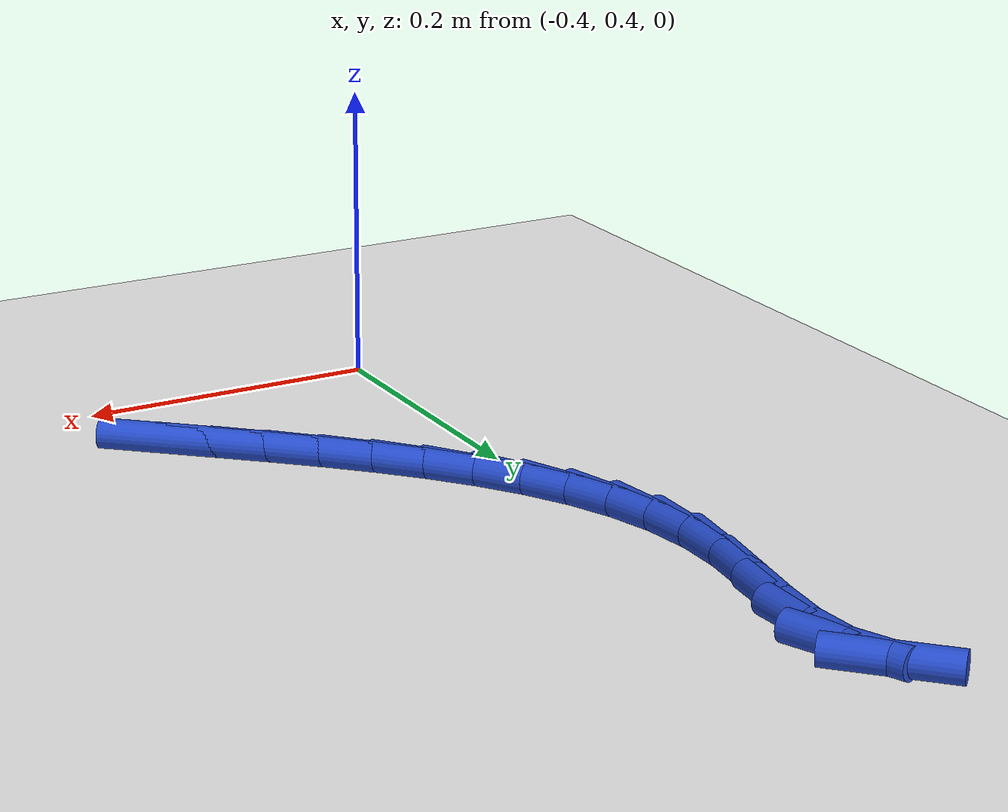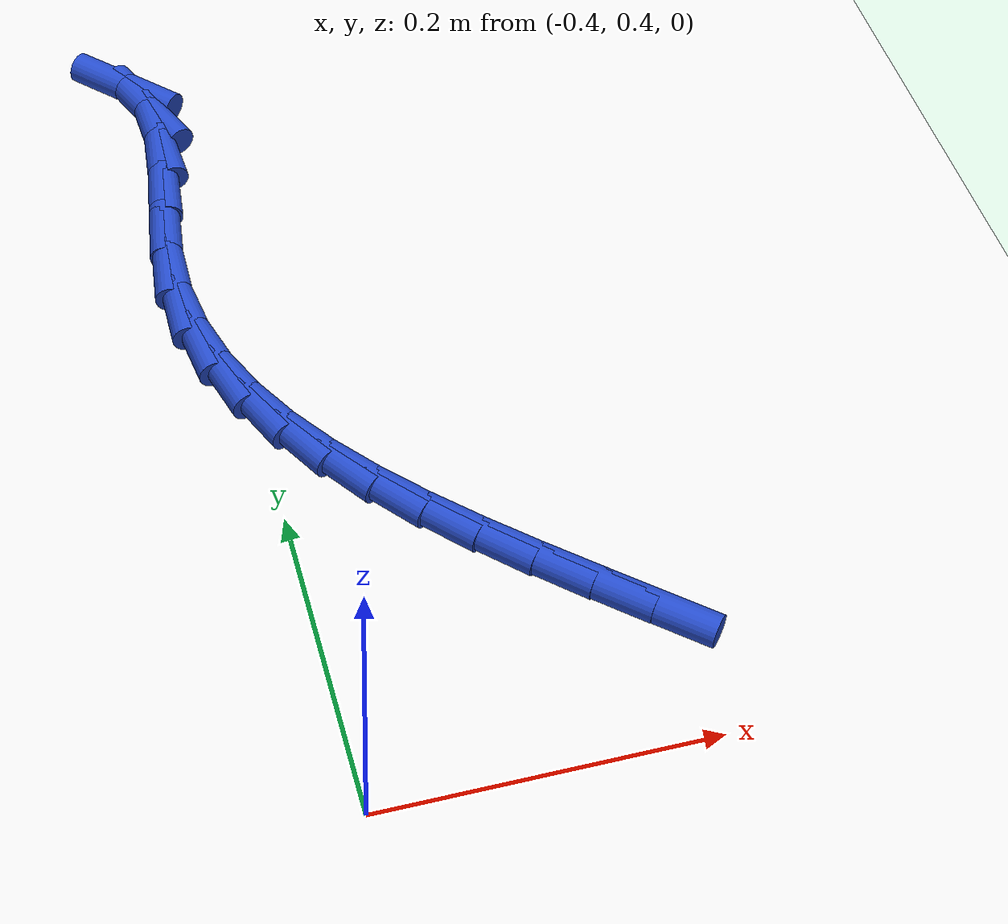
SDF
<sdf version="1.6">
 <world name="default">
  <model name="ground_plane">
   <static>1</static>
   <link name="link">
    <collision name="collision">
     <geometry><plane><normal>0 0 1</normal><size>100 100</size></plane></geometry>
     <surface><friction><ode><mu>100</mu><mu2>50</mu2></ode></friction></surface>
    </collision>
    <visual name="visual">
     <cast_shadows>0</cast_shadows>
     <geometry><plane><normal>0 0 1</normal><size>100 100</size></plane></geometry>
     <material>
      <script><uri>file://media/materials/scripts/gazebo.material</uri><name>Gazebo/WhiteGlow</name></script>
     </material>
    </visual>
   </link>
  </model>
  <model name="line">
   <link name="link_16">
    <pose>-0.214405184074523 0.48394117618437127 0.01 0 1.57 -0.7174698430547922</pose>
    <collision name="collision">
     <geometry><cylinder><radius>0.01</radius><length>0.08</length></cylinder></geometry>
    </collision>
    <visual name="visual">
     <material>
      <script><name>Gazebo/Blue</name><uri>file://media/materials/scripts/gazebo.material</uri></script>
     </material>
     <geometry><cylinder><radius>0.01</radius><length>0.08</length></cylinder></geometry>
    </visual>
   </link>
   <link name="link_17">
    <pose>-0.24222946229752865 0.5082206782799132 0.01 0 1.57 -0.7245666885214453</pose>
    <collision name="collision">
     <geometry><cylinder><radius>0.01</radius><length>0.08</length></cylinder></geometry>
    </collision>
    <visual name="visual">
     <material>
      <script><name>Gazebo/Blue</name><uri>file://media/materials/scripts/gazebo.material</uri></script>
     </material>
     <geometry><cylinder><radius>0.01</radius><length>0.08</length></cylinder></geometry>
    </visual>
   </link>
   <link name="link_18">
    <pose>-0.26971706360047354 0.5325521546535448 0.01 0 1.57 -0.7435663508352207</pose>
    <collision name="collision">
     <geometry><cylinder><radius>0.01</radius><length>0.08</length></cylinder></geometry>
    </collision>
    <visual name="visual">
     <material>
      <script><name>Gazebo/Blue</name><uri>file://media/materials/scripts/gazebo.material</uri></script>
     </material>
     <geometry><cylinder><radius>0.01</radius><length>0.08</length></cylinder></geometry>
    </visual>
   </link>
   <link name="link_19">
    <pose>-0.29642371487865077 0.5571129441318312 0.01 0 1.57 -0.7752102451999536</pose>
    <collision name="collision">
     <geometry><cylinder><radius>0.01</radius><length>0.08</length></cylinder></geometry>
    </collision>
    <visual name="visual">
     <material>
      <script><name>Gazebo/Blue</name><uri>file://media/materials/scripts/gazebo.material</uri></script>
     </material>
     <geometry><cylinder><radius>0.01</radius><length>0.08</length></cylinder></geometry>
    </visual>
   </link>
   <link name="link_20">
    <pose>-0.3219051430273532 0.5820803855413376 0.01 0 1.57 -0.820622277558166</pose>
    <collision name="collision">
     <geometry><cylinder><radius>0.01</radius><length>0.08</length></cylinder></geometry>
    </collision>
    <visual name="visual">
     <material>
      <script><name>Gazebo/Blue</name><uri>file://media/materials/scripts/gazebo.material</uri></script>
     </material>
     <geometry><cylinder><radius>0.01</radius><length>0.08</length></cylinder></geometry>
    </visual>
   </link>
   <link name="link_21">
    <pose>-0.34571707494187415 0.6076318177086295 0.01 0 1.57 -0.8812194223791564</pose>
    <collision name="collision">
     <geometry><cylinder><radius>0.01</radius><length>0.08</length></cylinder></geometry>
    </collision>
    <visual name="visual">
     <material>
      <script><name>Gazebo/Blue</name><uri>file://media/materials/scripts/gazebo.material</uri></script>
     </material>
     <geometry><cylinder><radius>0.01</radius><length>0.08</length></cylinder></geometry>
    </visual>
   </link>
   <link name="link_22">
    <pose>-0.3674152375175065 0.633944579460272 0.01 0 1.57 -0.9584930012429872</pose>
    <collision name="collision">
     <geometry><cylinder><radius>0.01</radius><length>0.08</length></cylinder></geometry>
    </collision>
    <visual name="visual">
     <material>
      <script><name>Gazebo/Blue</name><uri>file://media/materials/scripts/gazebo.material</uri></script>
     </material>
     <geometry><cylinder><radius>0.01</radius><length>0.08</length></cylinder></geometry>
    </visual>
   </link>
   <link name="link_23">
    <pose>-0.38655535764954324 0.6611960096228303 0.01 0 1.57 -1.053569909252011</pose>
    <collision name="collision">
     <geometry><cylinder><radius>0.01</radius><length>0.08</length></cylinder></geometry>
    </collision>
    <visual name="visual">
     <material>
      <script><name>Gazebo/Blue</name><uri>file://media/materials/scripts/gazebo.material</uri></script>
     </material>
     <geometry><cylinder><radius>0.01</radius><length>0.08</length></cylinder></geometry>
    </visual>
   </link>
   <link name="link_24">
    <pose>-0.40269316223327783 0.6895634470228704 0.01 0 1.57 -1.1664899673265698</pose>
    <collision name="collision">
     <geometry><cylinder><radius>0.01</radius><length>0.08</length></cylinder></geometry>
    </collision>
    <visual name="visual">
     <material>
      <script><name>Gazebo/Blue</name><uri>file://media/materials/scripts/gazebo.material</uri></script>
     </material>
     <geometry><cylinder><radius>0.01</radius><length>0.08</length></cylinder></geometry>
    </visual>
   </link>
   <link name="link_25">
    <pose>-0.415384378164003 0.7192242304869567 0.01 0 1.57 -1.2953009009751486</pose>
    <collision name="collision">
     <geometry><cylinder><radius>0.01</radius><length>0.08</length></cylinder></geometry>
    </collision>
    <visual name="visual">
     <material>
      <script><name>Gazebo/Blue</name><uri>file://media/materials/scripts/gazebo.material</uri></script>
     </material>
     <geometry><cylinder><radius>0.01</radius><length>0.08</length></cylinder></geometry>
    </visual>
   </link>
   <link name="link_26">
    <pose>-0.42418473233701187 0.7503556988416551 0.01 0 1.57 -1.4354097225507094</pose>
    <collision name="collision">
     <geometry><cylinder><radius>0.01</radius><length>0.08</length></cylinder></geometry>
    </collision>
    <visual name="visual">
     <material>
      <script><name>Gazebo/Blue</name><uri>file://media/materials/scripts/gazebo.material</uri></script>
     </material>
     <geometry><cylinder><radius>0.01</radius><length>0.08</length></cylinder></geometry>
    </visual>
   </link>
   <link name="link_27">
    <pose>-0.42864995164759767 0.7831351909135309 0.01 0 1.57 1.5617885875148487</pose>
    <collision name="collision">
     <geometry><cylinder><radius>0.01</radius><length>0.08</length></cylinder></geometry>
    </collision>
    <visual name="visual">
     <material>
      <script><name>Gazebo/Blue</name><uri>file://media/materials/scripts/gazebo.material</uri></script>
     </material>
     <geometry><cylinder><radius>0.01</radius><length>0.08</length></cylinder></geometry>
    </visual>
   </link>
   <link name="link_28">
    <pose>-0.4283382429153973 0.8177388014142021 0.01 0 1.57 1.4454517126386108</pose>
    <collision name="collision">
     <geometry><cylinder><radius>0.01</radius><length>0.08</length></cylinder></geometry>
    </collision>
    <visual name="visual">
     <material>
      <script><name>Gazebo/Blue</name><uri>file://media/materials/scripts/gazebo.material</uri></script>
     </material>
     <geometry><cylinder><radius>0.01</radius><length>0.08</length></cylinder></geometry>
    </visual>
   </link>
   <link name="link_29">
    <pose>-0.4237879270858374 0.8538509267352312 0.01 0 1.57 1.4118350441793106</pose>
    <collision name="collision">
     <geometry><cylinder><radius>0.01</radius><length>0.08</length></cylinder></geometry>
    </collision>
    <visual name="visual">
     <material>
      <script><name>Gazebo/Blue</name><uri>file://media/materials/scripts/gazebo.material</uri></script>
     </material>
     <geometry><cylinder><radius>0.01</radius><length>0.08</length></cylinder></geometry>
    </visual>
   </link>
   <link name="link_30">
    <pose>-0.4180059526432179 0.8899175156407436 0.01 0 1.57 1.4654519796701009</pose>
    <collision name="collision">
     <geometry><cylinder><radius>0.01</radius><length>0.08</length></cylinder></geometry>
    </collision>
    <visual name="visual">
     <material>
      <script><name>Gazebo/Blue</name><uri>file://media/materials/scripts/gazebo.material</uri></script>
     </material>
     <geometry><cylinder><radius>0.01</radius><length>0.08</length></cylinder></geometry>
    </visual>
   </link>
   <link name="link_31">
    <pose>-0.4143818519124362 0.9241925843160399 0.01 0 1.57 -1.508305978367452</pose>
    <collision name="collision">
     <geometry><cylinder><radius>0.01</radius><length>0.08</length></cylinder></geometry>
    </collision>
    <visual name="visual">
     <material>
      <script><name>Gazebo/Blue</name><uri>file://media/materials/scripts/gazebo.material</uri></script>
     </material>
     <geometry><cylinder><radius>0.01</radius><length>0.08</length></cylinder></geometry>
    </visual>
   </link>
   <link name="link_32">
    <pose>-0.4163051572183906 0.954930148946423 0.01 0 1.57 -1.176267296860016</pose>
    <collision name="collision">
     <geometry><cylinder><radius>0.01</radius><length>0.08</length></cylinder></geometry>
    </collision>
    <visual name="visual">
     <material>
      <script><name>Gazebo/Blue</name><uri>file://media/materials/scripts/gazebo.material</uri></script>
     </material>
     <geometry><cylinder><radius>0.01</radius><length>0.08</length></cylinder></geometry>
    </visual>
   </link>
   <link name="link_33">
    <pose>-0.4269466669309595 0.9804886379719094 0.01 0 1.57 -0.7943941027103802</pose>
    <collision name="collision">
     <geometry><cylinder><radius>0.01</radius><length>0.08</length></cylinder></geometry>
    </collision>
    <visual name="visual">
     <material>
      <script><name>Gazebo/Blue</name><uri>file://media/materials/scripts/gazebo.material</uri></script>
     </material>
     <geometry><cylinder><radius>0.01</radius><length>0.08</length></cylinder></geometry>
    </visual>
   </link>
  </model>
 </world>
</sdf>
